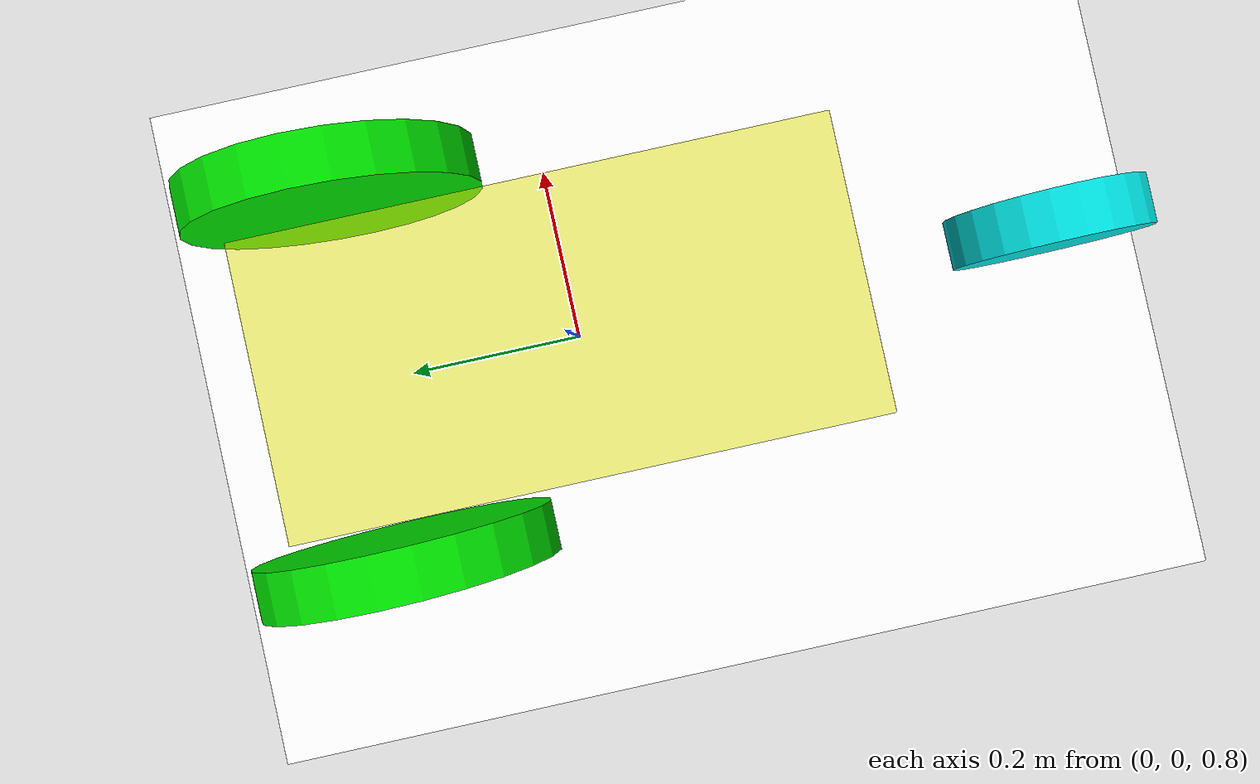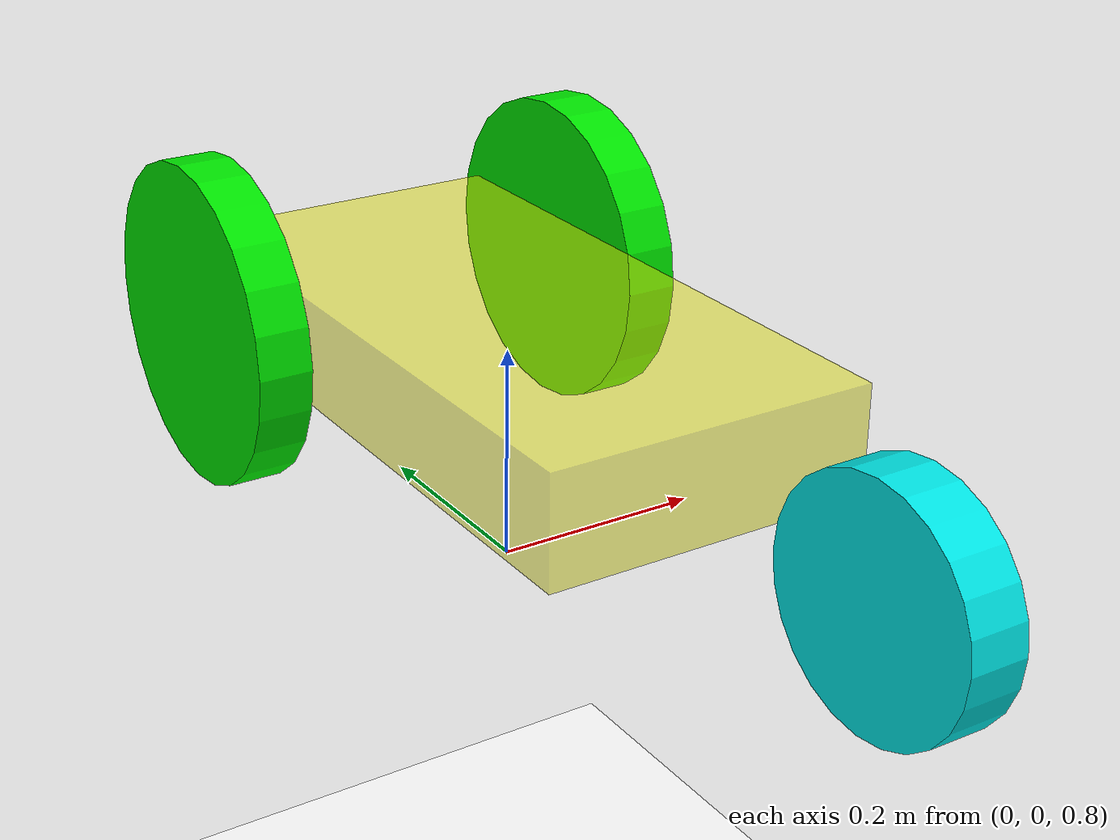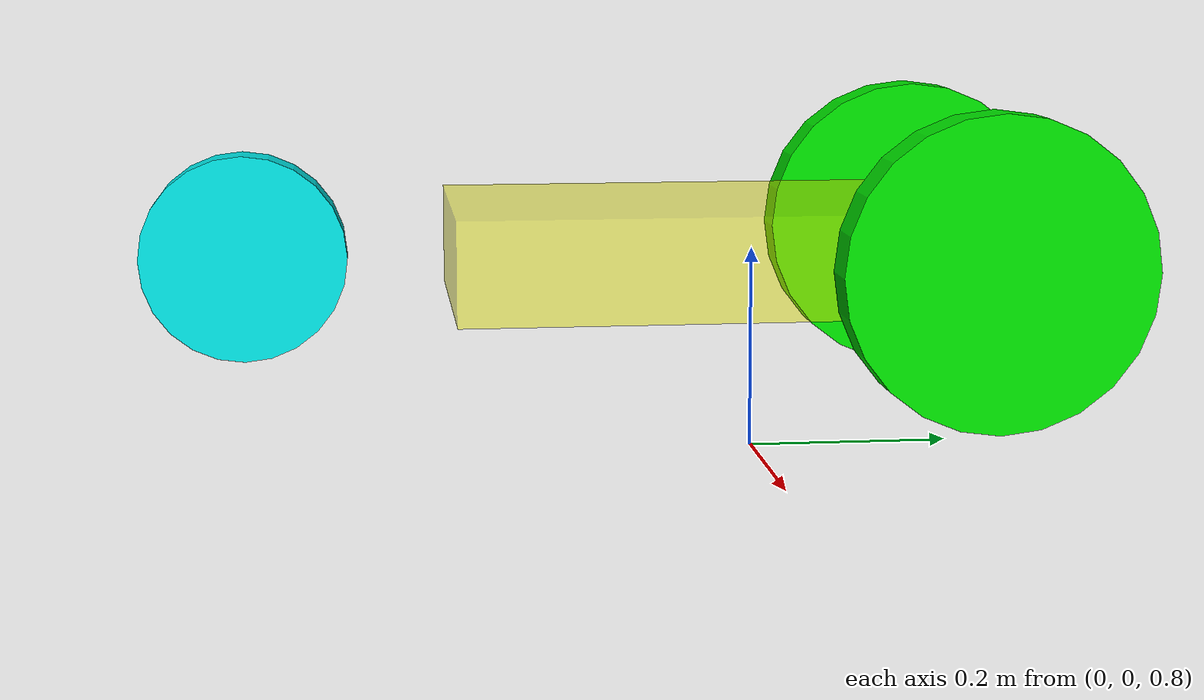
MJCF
<mujoco>
    <option gravity="0 0 -9.81"/>
    <worldbody>
        <light diffuse=".5 .5 .5" pos="0 0 15" dir="0 0 -1"/>
        <geom type="plane" size="10 10 0.1" rgba="1 1 1 1"/>
        <geom type="plane" size=".05 .05 0.1" rgba="1 0 0 1" pos=".25 .25 0"/>

        <body pos="0 0 1">
            <joint type="free"/>
            <geom name="chassis" type="box" size=".15 .3 .05" rgba=".9 .9 0 0.5"/>

            <body name="left_wheel" pos="0.19 .2 0">
                <joint name="left_wheel_joint" type="hinge" axis="1 0 0" limited="false"/>
                <geom name="left_wheel_geom" type="cylinder" size="0.15 0.025" rgba="0 .9 0 1" mass="0.2" friction="1 0.005 0.0001" euler="0 90 0"/>
            </body>

            <body name="right_wheel" pos="-0.19 .2 0">
                <joint name="right_wheel_joint" type="hinge" axis="1 0 0" limited="false"/>
                <geom name="right_wheel_geom" type="cylinder" size="0.15 0.025" rgba="0 .9 0 1" mass="0.2" friction="1 0.005 0.0001" euler="0 90 0"/>
            </body>

            <body name="rear_wheel_mount" pos="0 -0.5 0">
                <!-- steering hinge -->
                <joint name="steering_joint" type="hinge" axis="0 0 1" limited="false" damping=".01"/>
                <geom type="sphere" size="0.001" rgba="0 0 0 0"/>

                <body name="rear_wheel" pos="0 0 0">
                    <!-- rolling hinge -->
                    <joint name="rear_wheel_roll" type="hinge" axis="1 0 0" limited="false" damping=".01"/>
                    <geom name="rear_wheel_geom" type="cylinder" size="0.1 0.025"
                        rgba="0 .9 .9 1" mass="0.2" friction="1 0.005 0.0001" euler="0 90 0"/>
                </body>
            </body>
        </body>
    </worldbody>

    <actuator>
        <velocity name="left_wheel_vel" joint="left_wheel_joint" kv="1"/>
        <velocity name="right_wheel_vel" joint="right_wheel_joint" kv="1"/>
        <position name="turn_wheel_vel" joint="steering_joint" kp="1"/>
    </actuator>
</mujoco>
